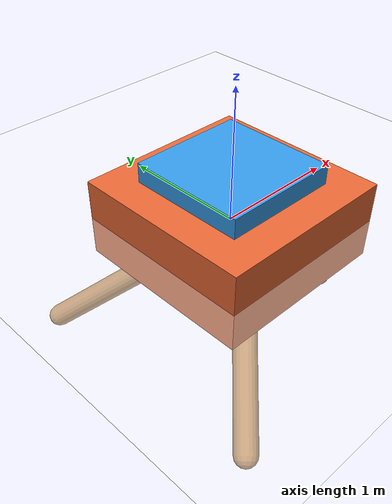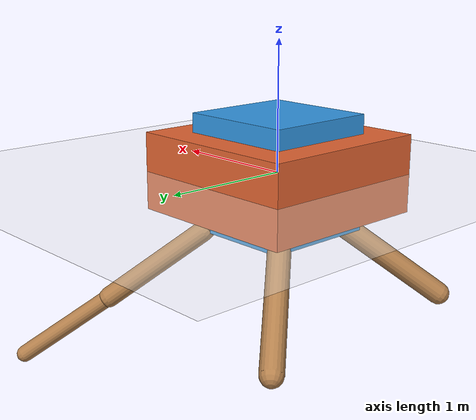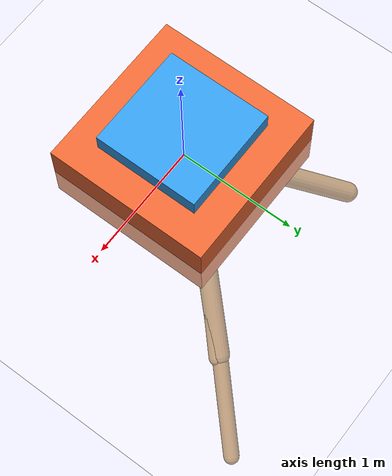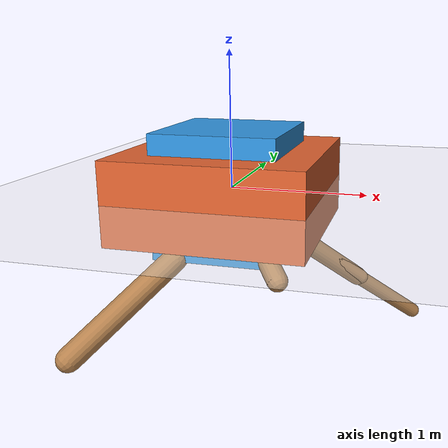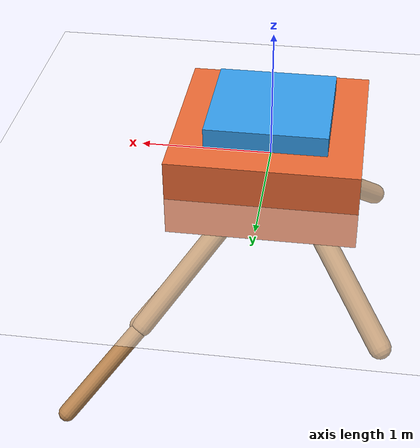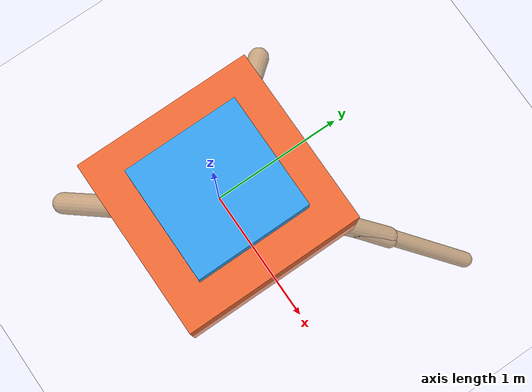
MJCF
<mujoco model="dex-gripper">
  <asset>
    <texture name="skybox" type="skybox" builtin="gradient" rgb1=".2 .3 .4" rgb2="0 0 0" width="800" height="800" mark="random" markrgb="1 1 1"/>
    <texture name="grid" type="2d" builtin="checker" rgb1=".2 .1 .2" rgb2=".3 .2 .3" width="300" height="300" mark="edge" markrgb=".3 .2 .3"/>
    <material name="grid" texture="grid" texrepeat="1 1" texuniform="true" reflectance=".2"/>
    <material name="self" rgba=".7 .5 .3 1"/>
  </asset>
  <visual>
    <headlight ambient=".4 .4 .4" diffuse=".8 .8 .8" specular="0.1 0.1 0.1"/>
    <map znear=".001"/>
    <quality shadowsize="16384"/>
  </visual>
  <compiler angle="degree" coordinate="global" inertiafromgeom="true"/>
  <option integrator="RK4" timestep="0.01"/>
  <default>
    <joint armature="1" damping="1" limited="true"/>
    <geom conaffinity="0" condim="3" density="5.0" friction="1 0.5 0.5" margin="0.01" rgba=".7 .5 .3 1"/>
  </default>
  <worldbody>
    <light cutoff="100" diffuse="1 1 1" dir="0.3 0 -1.3" directional="true" exponent="1" pos="-30 0 130" specular=".1 .1 .1"/>
    <geom conaffinity="1" condim="3" name="floor" pos="0 0 0" rgba="1 1 1 1" size="200 200 .125" type="plane" material="grid"/>
    <body name="0" pos="0 0 0" gravcomp="1">
      <camera name="track" mode="fixed" pos="0 10 5" quat="0 0 0.547 0.892"/>
      <geom pos="0 0 0" size="0.291303 0.206657 0.204222" type="ellipsoid"/>
      <joint name="root_x" type="slide" axis="1 0 0" pos="0 0 0" limited="false" armature="0" damping="0"/>
      <joint name="root_y" type="slide" axis="0 1 0" pos="0 0 0" limited="false" armature="0" damping="0"/>
      <joint name="root_z" type="slide" axis="0 0 1" pos="0 0 0" limited="false" armature="0" damping="0"/>
      <body name="1" pos="0 0 0" gravcomp="1">
        <joint axis="-0.707107 0.707107 0" name="1_joint" pos="0 0 0" range="-30 30" type="hinge" damping="0"/>
        <geom fromto="-0.036388 -0.046301 0.046896 0.387959 0.493659 -0.5" size="0.068328 0.068328 0.068328" type="capsule"/>
        <body name="11" pos="0.387959 0.493659 -0.5" gravcomp="1">
          <joint axis="-0.707107 0.707107 0" name="11_joint" pos="0.387959 0.493659 -0.5" range="-30 30" type="hinge" damping="0"/>
          <geom fromto="0.337435 0.439748 -0.445661 0.852859 0.989722 -1" size="0.07998 0.07998 0.07998" type="capsule"/>
          <body name="111" pos="0.852859 0.989722 -1" gravcomp="1">
            <joint axis="-0.707107 0.707107 0" name="111_joint" pos="0.852859 0.989722 -1" range="-30 30" type="hinge" damping="0"/>
            <geom fromto="0.798635 0.935891 -0.94536 1.34905 1.482315 -1.5" size="0.065425 0.065425 0.065425" type="capsule"/>
          </body>
        </body>
        <body name="21" pos="0.387959 0.493659 -0.5" gravcomp="1">
          <joint axis="-0.707107 0.707107 0" name="21_joint" pos="0.387959 0.493659 -0.5" range="-30 30" type="hinge" damping="0"/>
          <geom fromto="0.310733 0.418166 -0.422479 0.886052 0.980577 -1" size="0.061576 0.061576 0.061576" type="capsule"/>
        </body>
      </body>
      <body name="2" pos="0 0 0" gravcomp="1">
        <joint axis="-0.707107 -0.707107 0" name="2_joint" pos="0 0 0" range="-30 30" type="hinge" damping="0"/>
        <geom fromto="0.042049 -0.04059 0.042319 -0.496814 0.479574 -0.5" size="0.062413 0.062413 0.062413" type="capsule"/>
        <body name="12" pos="-0.496814 0.479574 -0.5" gravcomp="1">
          <joint axis="-0.707107 -0.707107 0" name="12_joint" pos="-0.496814 0.479574 -0.5" range="-30 30" type="hinge" damping="0"/>
          <geom fromto="-0.437346 0.412914 -0.433252 -0.94228 0.97892 -1" size="0.085187 0.085187 0.085187" type="capsule"/>
        </body>
      </body>
      <body name="3" pos="0 0 0" gravcomp="1">
        <joint axis="0.707107 -0.707107 0" name="3_joint" pos="0 0 0" range="-30 30" type="hinge" damping="0"/>
        <geom fromto="0.030375 0.043093 0.043628 -0.348115 -0.493872 -0.5" size="0.077157 0.077157 0.077157" type="capsule"/>
        <body name="13" pos="-0.348115 -0.493872 -0.5" gravcomp="1">
          <joint axis="0.707107 -0.707107 0" name="13_joint" pos="-0.348115 -0.493872 -0.5" range="-30 30" type="hinge" damping="0"/>
          <geom fromto="-0.283689 -0.428388 -0.433766 -0.834462 -0.988209 -1" size="0.087336 0.087336 0.087336" type="capsule"/>
        </body>
        <body name="23" pos="-0.348115 -0.493872 -0.5" gravcomp="1">
          <joint axis="0.707107 -0.707107 0" name="23_joint" pos="-0.348115 -0.493872 -0.5" range="-30 30" type="hinge" damping="0"/>
          <geom fromto="-0.273936 -0.419341 -0.425353 -0.844979 -0.993097 -1" size="0.065426 0.065426 0.065426" type="capsule"/>
        </body>
      </body>
      <body name="4" pos="0 0 0" gravcomp="1">
        <joint axis="0.707107 0.707107 0" name="4_joint" pos="0 0 0" range="-30 30" type="hinge" damping="0"/>
        <geom fromto="-0.067004 0.070399 0.070511 0.475125 -0.499205 -0.5" size="0.073343 0.073343 0.073343" type="capsule"/>
      </body>
    </body>
    <body name="box_1" pos="0 0 0">
      <freejoint name="box_1_joint"/>
      <geom name="box_1" type="box" size="0.45 0.45 0.45" rgba="0.2 0.6 0.9 1.0" contype="1" conaffinity="1" density="10" friction="2.5 0.1 0.05"/>
    </body>
    <body name="box_2" pos="3.0 0 0.425">
      <freejoint name="box_2_joint"/>
      <geom name="box_2" type="box" size="0.7 0.7 0.3" rgba="0.9 0.4 0.2 1.0" contype="1" conaffinity="1" density="10" friction="2.5 0.1 0.05"/>
    </body>
  </worldbody>
  <actuator>
    <motor name="root_x_motor" joint="root_x" gear="50" ctrllimited="true" ctrlrange="-1 1"/>
    <motor name="root_y_motor" joint="root_y" gear="50" ctrllimited="true" ctrlrange="-1 1"/>
    <motor name="root_z_motor" joint="root_z" gear="50" ctrllimited="true" ctrlrange="-1 1"/>
    <motor ctrllimited="true" ctrlrange="-1.0 1.0" joint="1_joint" gear="20.353766" name="1_joint"/>
    <motor ctrllimited="true" ctrlrange="-1.0 1.0" joint="2_joint" gear="25.157406" name="2_joint"/>
    <motor ctrllimited="true" ctrlrange="-1.0 1.0" joint="3_joint" gear="20.32206" name="3_joint"/>
    <motor ctrllimited="true" ctrlrange="-1.0 1.0" joint="4_joint" gear="49.743126" name="4_joint"/>
    <motor ctrllimited="true" ctrlrange="-1.0 1.0" joint="11_joint" gear="38.567847" name="11_joint"/>
    <motor ctrllimited="true" ctrlrange="-1.0 1.0" joint="12_joint" gear="59.438981" name="12_joint"/>
    <motor ctrllimited="true" ctrlrange="-1.0 1.0" joint="13_joint" gear="29.56272" name="13_joint"/>
    <motor ctrllimited="true" ctrlrange="-1.0 1.0" joint="21_joint" gear="48.833263" name="21_joint"/>
    <motor ctrllimited="true" ctrlrange="-1.0 1.0" joint="23_joint" gear="29.838446" name="23_joint"/>
    <motor ctrllimited="true" ctrlrange="-1.0 1.0" joint="111_joint" gear="51.469294" name="111_joint"/>
  </actuator>
</mujoco>
